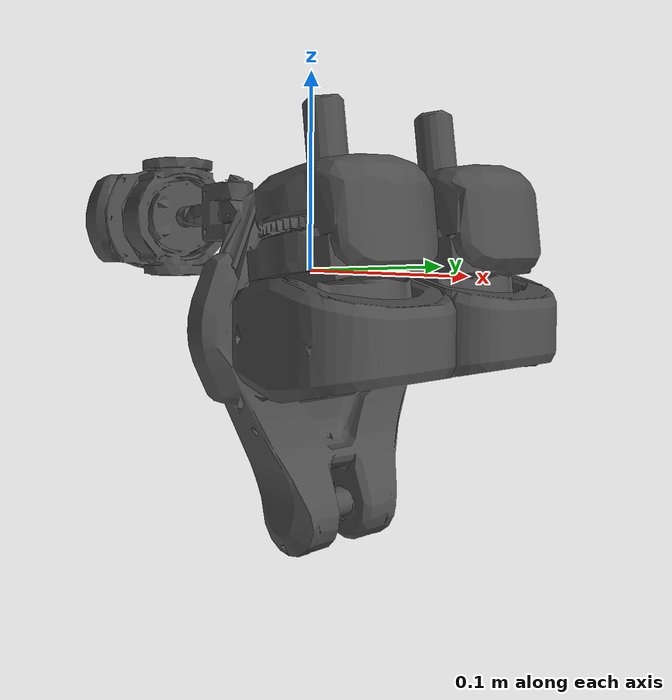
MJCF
<mujoco model="leg_right_1_link">
  <default>
    <default class="visual">
      <geom group="2" type="mesh" contype="0" conaffinity="0"/>
    </default>
    <default class="collision">
      <geom group="3" type="mesh"/>
    </default>
  </default>
  <asset>
    <material name="mtl_leg_right_1_link" specular="0.20000000000000004" shininess="1.0" rgba="0.29803922 0.29803922 0.29803922 1.0"/>
    <mesh file="leg_right_1_link.obj"/>
  </asset>
  <worldbody>
    <body name="leg_right_1_link">
      <geom material="mtl_leg_right_1_link" mesh="leg_right_1_link" class="visual"/>
      <geom mesh="leg_right_1_link" class="collision"/>
    </body>
  </worldbody>
</mujoco>
